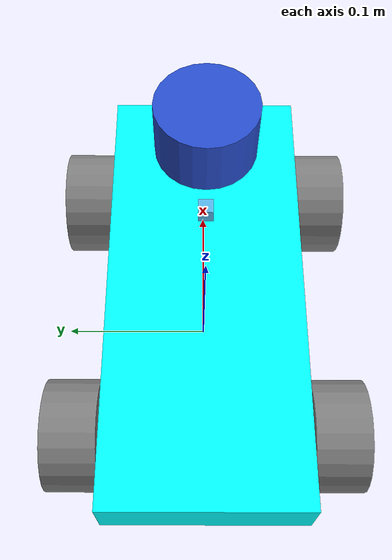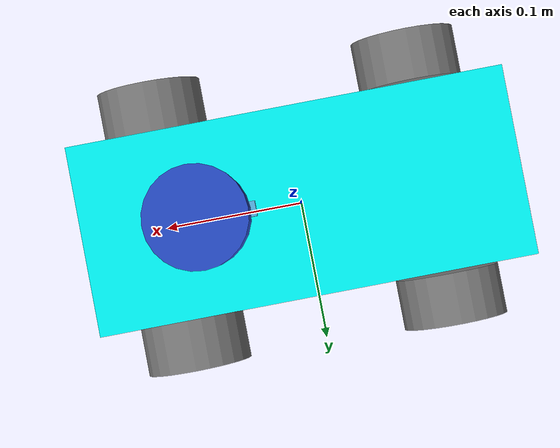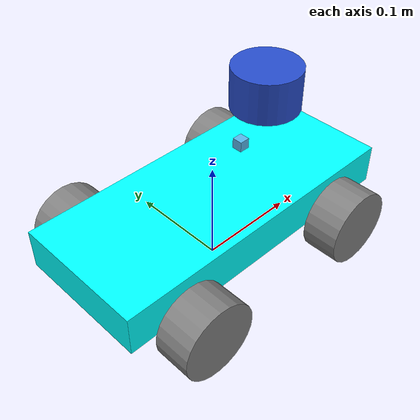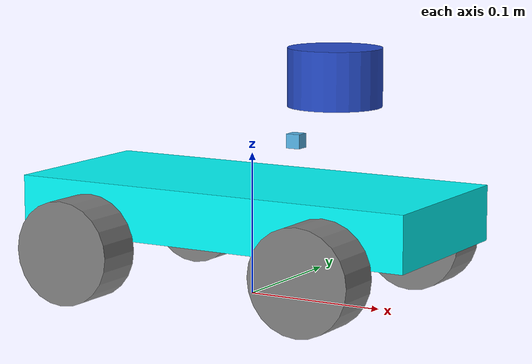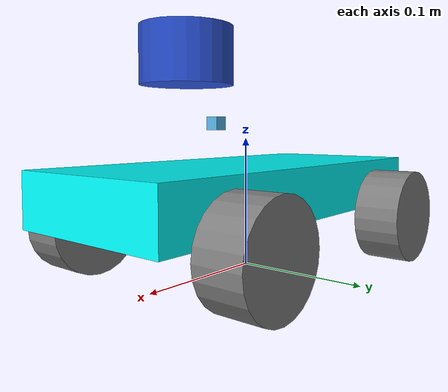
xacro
<?xml version="1.0"?>
<robot name="dummy1" xmlns:xacro="http://www.ros.org/wiki/xacro">
    <xacro:property name="base_width" value="0.130"/>
    <xacro:property name="base_length" value="0.3"/>
    <xacro:property name="base_height" value="0.039"/>

    <xacro:property name="wheel_radius" value="0.0365"/>
    <xacro:property name="wheel_width" value="0.035"/>
    <xacro:property name="wheel_ygap" value="0.020"/>
    <xacro:property name="wheel_zoff" value="0.025"/>
    <xacro:property name="wheel_xoff" value="0.183"/>
    <xacro:property name="bar_yoff" value="0.06"/>

    <material name="Gray">
        <color rgba="0.5 0.5 0.5 1.0"/>
    </material>
    <material name="Green">
        <color rgba="0.0 1.0 0.0 1.0"/>
    </material>
    <link name="base_footprint"/>

    <link name="base_link">
        <visual>
            <origin xyz="0.0 0.0 0.0" rpy="0.0 0.0 0.0"/>
            <geometry>
                <box size="${base_length} ${base_width} ${base_height}"/>
            </geometry>
            <material name="Cyan">
                <color rgba="0 1.0 1.0 1.0"/>
            </material>
        </visual>
        <collision>
            <origin xyz="0.0 0.0 0.0" rpy="0.0 0.0 0.0"/>
            <geometry>
                <box size="0.0 0.0 0.0"/>
            </geometry>
        </collision>
        <inertial>
            <mass value="15.0"/>
            <inertia ixx="0.11440125" ixy="0.0" ixz="0.0"
                     iyy="0.133625" iyz="0.0"
                     izz="0.02302625"/>
        </inertial>
    </link>

    <gazebo reference="base_link">
        <material>Gazebo/Black</material>
    </gazebo>

    <joint name="base_joint" type="fixed">
        <parent link="base_footprint"/>
        <child link="base_link"/>
        <origin xyz="0.0 0.0 ${wheel_radius + wheel_zoff}" rpy="0.0 0.0 0.0"/>
    </joint>
    <link name="laser">
        <visual>
            <origin xyz="0.0 0.0 0.0" />
            <geometry>
                <cylinder radius="0.0325" length="0.04"/>
            </geometry>
        </visual>
        <collision>
            <origin xyz="0.0 0.0 0.0" />
            <geometry>
                <cylinder radius="0.0325" length="0.04"/>
            </geometry>
        </collision>
        <inertial>
            <origin xyz="0 0 0" rpy="0 0 0"/>
            <mass value="0.125"/>
            <inertia ixx="0.001"  ixy="0"  ixz="0" iyy="0.001" iyz="0" izz="0.001" />
        </inertial>
    </link>
    <joint name="laser_joint" type="fixed">
        <origin xyz="0.065 0.0 0.0960" />
        <parent link="base_link"/>
        <child link="laser"/>
    </joint>

    <gazebo reference="laser">
        <sensor name="lidar" type="ray">
            <always_on>true</always_on>
            <visualize>true</visualize>
            <update_rate>10</update_rate>
            <ray>
                <scan>
                    <horizontal>
                        <samples>5000</samples>
                        <resolution>0.500000</resolution>
                        <min_angle>-3.14159</min_angle>
                        <max_angle>3.14159</max_angle>
                    </horizontal>
                </scan>
                <range>
                    <min>0.12</min>
                    <max>10.0</max>
                    <resolution>0.015</resolution>
                </range>
                <noise>
                    <type>gaussian</type>
                    <mean>0.0</mean>
                    <stddev>0.01</stddev>
                </noise>
            </ray>
            <plugin name="scan" filename="libgazebo_ros_ray_sensor.so">
                <ros>
                    <remapping>~/out:=scan</remapping>
                </ros>
                <output_type>sensor_msgs/LaserScan</output_type>
                <frame_name>laser</frame_name>
            </plugin>
        </sensor>
    </gazebo>
    <gazebo reference="laser">
        <mu1>0.01</mu1>
        <mu2>0.01</mu2>
        <material>Gazebo/Blue</material>
    </gazebo>

<xacro:macro name="wheel" params="prefix x_reflect y_reflect">
    <link name="${prefix}_link">
        <visual>
            <origin xyz="0.0 0.0 0.0" rpy="${pi/2} 0.0 0.0"/>
            <geometry>
                <cylinder radius="${wheel_radius}" length="${wheel_width}"/>
            </geometry>
            <material name="Gray"/>
        </visual>
        <collision>
            <origin xyz="0.0 0.0 0.0" rpy="${pi/2} 0.0 0.0"/>
            <geometry>
                <cylinder radius="${wheel_radius}" length="${wheel_width}"/>
            </geometry>
        </collision>
        <inertial>
            <origin xyz="0 0 0" rpy="${pi/2} 0 0"/>
            <mass value="1.3729096e+00"/>
            <inertia ixx="8.7002718e-03" ixy="-4.7576583e-05" ixz="1.1160499e-04"
                        iyy="8.6195418e-03" iyz="-3.5422299e-06"
                        izz="1.4612727e-02" />
        </inertial>
    </link>
    <joint name="${prefix}_joint" type="continuous">
        <parent link="base_link"/>
        <child link="${prefix}_link"/>
        <axis xyz="0.0 1.0 0.0"/>
        <origin xyz="${x_reflect*wheel_xoff/2} ${y_reflect*(base_width/2+wheel_ygap)} ${-wheel_zoff}" rpy="0.0 0.0 0.0"/>
    </joint>
</xacro:macro>
    <xacro:wheel prefix="driveRwhl_l" x_reflect="-1" y_reflect="1"/>
    <xacro:wheel prefix="driveRwhl_r" x_reflect="-1" y_reflect="-1"/>

    <link name="front_L_bar_link">
        <visual>
            <origin xyz="0.047298 -0.02 0.0" rpy="0.0 0.0 0.0"/>
            <geometry>
                <box size="0.03 0.01995 0.03"/>
            </geometry>
            <material name="Green"/>
        </visual>
        <inertial>
            <origin xyz="0.047298 0.0 0.0"/>
            <mass value="20.0"/>
            <inertia ixx="2" ixy="0" ixz="0" iyy="2" iyz="0" izz="2"/>
        </inertial>
        <collision>
            <origin xyz="0.0 0.0 0.0" rpy="0.0 0.0 0.0"/>
            <geometry>
                <box size="0.047298 0.0 0.0"/>
            </geometry>
        </collision>
    </link>
    <link name="front_R_bar_link">
        <visual>
            <origin xyz="0.047298 0.02 0.0" rpy="0.0 0.0 0.0"/>
            <geometry>
                <box size="0.03 0.01995 0.03"/>
            </geometry>
            <material name="Green"/>
        </visual>
        <inertial>
            <origin xyz="0.047298 0.0 0.0"/>
            <mass value="20.0"/>
            <inertia ixx="2" ixy="0" ixz="0" iyy="2" iyz="0" izz="2"/>
        </inertial>
        <collision>
            <origin xyz="0.0 0.0 0.0" rpy="0.0 0.0 0.0"/>
            <geometry>
                <box size="0.047298 0.0 0.0"/>
            </geometry>
        </collision>
    </link>
    <joint name="front_R_bar_joint" type="revolute">
        <origin xyz="0.0 -${bar_yoff} 0.0" rpy="0.0 0.0 0.0"/>
        <parent link="base_link"/>
        <child link="front_R_bar_link"/>
        <axis xyz="0.0 0.0 1"/>
        <limit lower="-0.5" upper="0.5" effort="100" velocity="10.0"/>
    </joint>
    <joint name="front_L_bar_joint" type="revolute">
        <origin xyz="0.0 ${bar_yoff} 0.0" rpy="0.0 0.0 0.0"/>
        <parent link="base_link"/>
        <child link="front_L_bar_link"/>
        <axis xyz="0.0 0.0 1"/>
        <limit lower="-0.5" upper="0.5" effort="100" velocity="10.0"/>
    </joint>

    <link name="front_L_wheel_link">
        <visual>
            <origin rpy="${pi/2} 0.0 0.0"/>
            <geometry>
                <cylinder radius="${wheel_radius}" length="${wheel_width}"/>
            </geometry>
            <material name="Gray"/>
        </visual>
        <collision>
            <origin xyz="0 0 0" rpy="${pi/2} 0 0"/>
            <geometry>
                <cylinder radius="${wheel_radius}" length="${wheel_width}"/>
            </geometry>
        </collision>
        <inertial>
            <origin xyz="0 0 0" rpy="${pi/2} 0 0"/>
            <mass value="1.3729096e+00"/>
            <inertia ixx="8.7002718e-03" ixy="-4.7576583e-05" ixz="1.1160499e-04"
                        iyy="8.6195418e-03" iyz="-3.5422299e-06"
                        izz="1.4612727e-02" />
        </inertial>
    </link>
    <joint name="front_L_wheel_joint" type="continuous">
        <parent link="front_L_bar_link"/>
        <child link="front_L_wheel_link"/>
        <axis xyz="0.0 1.0 0.0"/>
        <origin xyz="${wheel_xoff/2} ${(base_width/2-bar_yoff+(wheel_width/2))} ${-wheel_zoff}" rpy="0.0 0.0 0.0"/>
    </joint>

    <link name="front_R_wheel_link">
        <visual>
            <origin rpy="${pi/2} 0 0"/>
            <geometry>
                <cylinder radius="${wheel_radius}" length="${wheel_width}"/>
            </geometry>
            <material name="Gray"/>
        </visual>
        <collision>
            <origin rpy="${pi/2} 0 0"/>
            <geometry>
                <cylinder radius="${wheel_radius}" length="${wheel_width}"/>
            </geometry>
        </collision>
        <inertial>
                <origin xyz="0 0 0" rpy="${pi/2} 0 0"/>
                <mass value="1.3729096e+00"/>
                <inertia ixx="8.7002718e-03" ixy="-4.7576583e-05" ixz="1.1160499e-04"
                         iyy="8.6195418e-03" iyz="-3.5422299e-06"
                         izz="1.4612727e-02" />
        </inertial>
    </link>
    <joint name="front_R_wheel_joint" type="continuous">
        <parent link="front_R_bar_link"/>
        <child link="front_R_wheel_link"/>
        <axis xyz="0.0 1.0 0.0"/>
        <origin xyz="${wheel_xoff/2} ${-1*((base_width/2)-bar_yoff+(wheel_width/2))} ${-wheel_zoff}" rpy="0.0 0.0 0.0"/>
    </joint>

    <gazebo>
        <plugin name="gazebo_ros_ackerman_drive" filename="libgazebo_ros_ackermann_drive.so">
            <ros>
                <remapping> name="cmd_vel" value="cmd_vel"</remapping>
                <remapping> name="odom" value="odom/unfiltered"</remapping>
            </ros>
            <update_rate>50.0</update_rate>

            <front_left_joint>front_L_wheel_joint</front_left_joint>
            <front_right_joint>front_R_wheel_joint</front_right_joint>
            <rear_left_joint>driveRwhl_l_joint</rear_left_joint>
            <rear_right_joint>driveRwhl_r_joint</rear_right_joint>

            <left_steering_joint>front_L_bar_joint</left_steering_joint>
            <right_steering_joint>front_R_bar_joint</right_steering_joint>

            <max_steer>0.5233</max_steer>
            <max_steering_angle>2.0944</max_steering_angle>
            <max_speed>10</max_speed>

            <publish_odom>true</publish_odom>
            <publish_odom_tf>true</publish_odom_tf>
            <publish_wheel_tf>true</publish_wheel_tf>

            <left_steering_pid_gain>1500 0 1</left_steering_pid_gain>
            <left_steering_i_range>0 0</left_steering_i_range>
            <right_steering_pid_gain>1500 0 1</right_steering_pid_gain>
            <right_steering_i_range>0 0</right_steering_i_range>
            <linear_velocity_pid_gain>1000 0 1</linear_velocity_pid_gain>
            <linear_velocity_i_range>0 0</linear_velocity_i_range>

            <odometry_frame>odom</odometry_frame>
            <robot_base_frame>base_link</robot_base_frame>
        </plugin>
    </gazebo>

    <link name="imu_link">
        <visual>
            <geometry>
                <box size="0.01 0.01 0.01"/>
            </geometry>
        </visual>
        <collision>
            <geometry>
                <box size="0.01 0.01 0.01"/>
            </geometry>
        </collision>
    </link>
    <joint name="imu_joint" type="fixed">
        <parent link="base_link"/>
        <child link="imu_link"/>
        <origin xyz="0.035 0.0 0.05"/>
    </joint>

    <gazebo reference="imu_link">
        <gravity>true</gravity>
        <sensor name="imu" type="imu">
            <always_on>true</always_on>
            <update_rate>50.0</update_rate>
            <visualize>true</visualize>
            <imu>
                <orientation>
                    <x>
                        <noise type="gaussian">
                            <mean>0.0</mean>
                            <stddev>2e-3</stddev>
                        </noise>
                    </x>
                    <y>
                        <noise type="gaussian">
                            <mean>0.0</mean>
                            <stddev>2e-3</stddev>
                        </noise>
                    </y>
                    <z>
                        <noise type="gaussian">
                            <mean>0.0</mean>
                            <stddev>2e-3</stddev>
                        </noise>
                    </z>
                </orientation>
                <angular_velocity>
                    <x>
                        <noise type="gaussian">
                            <mean>0.0</mean>
                            <stddev>2e-4</stddev>
                        </noise>
                    </x>
                    <y>
                        <noise type="gaussian">
                            <mean>0.0</mean>
                            <stddev>2e-4</stddev>
                        </noise>
                    </y>
                    <z>
                        <noise type="gaussian">
                            <mean>0.0</mean>
                            <stddev>2e-4</stddev>
                        </noise>
                    </z>
                </angular_velocity>
                <linear_acceleration>
                    <x>
                        <noise type="gaussian">
                            <mean>0.0</mean>
                            <stddev>1.7e-2</stddev>
                        </noise>
                    </x>
                    <y>
                        <noise type="gaussian">
                            <mean>0.0</mean>
                            <stddev>1.7e-2</stddev>
                        </noise>
                    </y>
                    <z>
                        <noise type="gaussian">
                            <mean>0.0</mean>
                            <stddev>1.7e-2</stddev>
                        </noise>
                    </z>
                </linear_acceleration>
            </imu>
            <plugin name="dummy1_imu" filename="libgazebo_ros_imu_sensor.so">
                <initial_orientation_as_reference>false</initial_orientation_as_reference>
                <frame_name>imu_link</frame_name>
                <ros>
                    <namespace>/imu</namespace>
                    <remapping>~/out:=data</remapping>
                </ros>
            </plugin>
        </sensor>
    </gazebo>
</robot>
